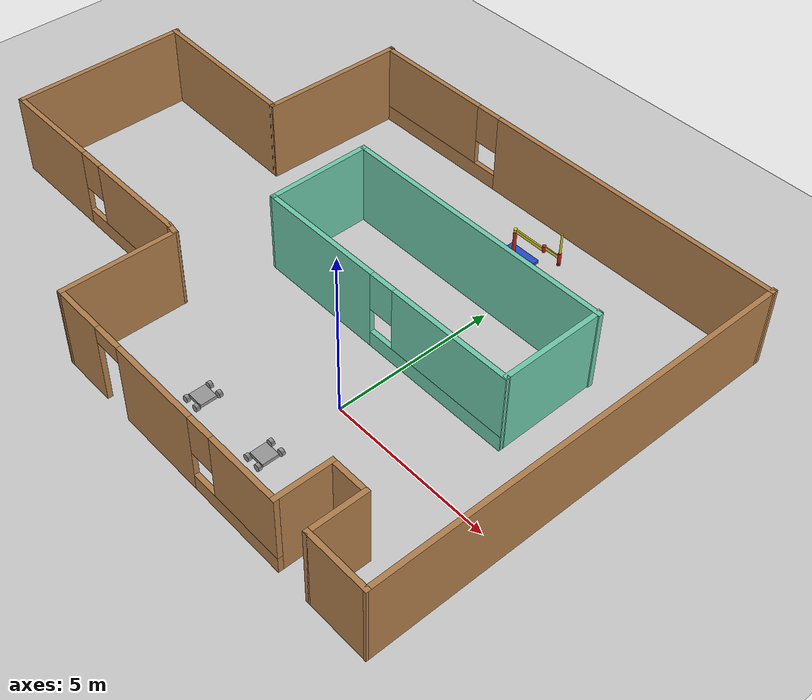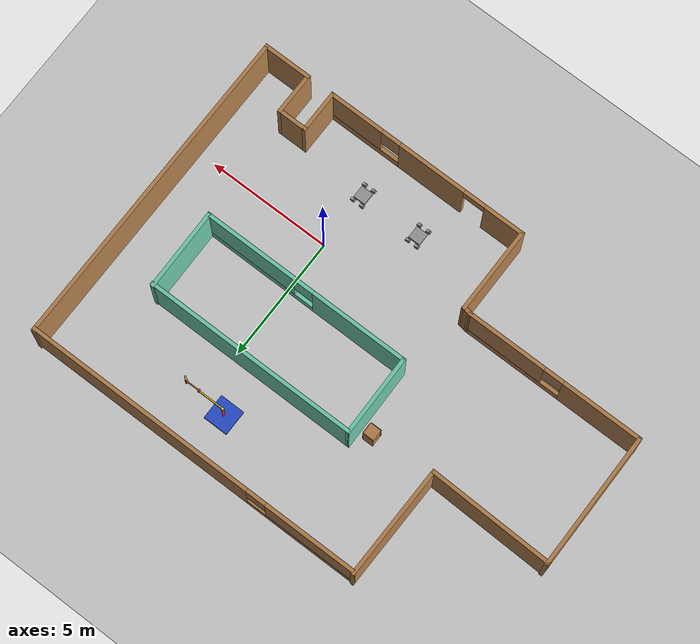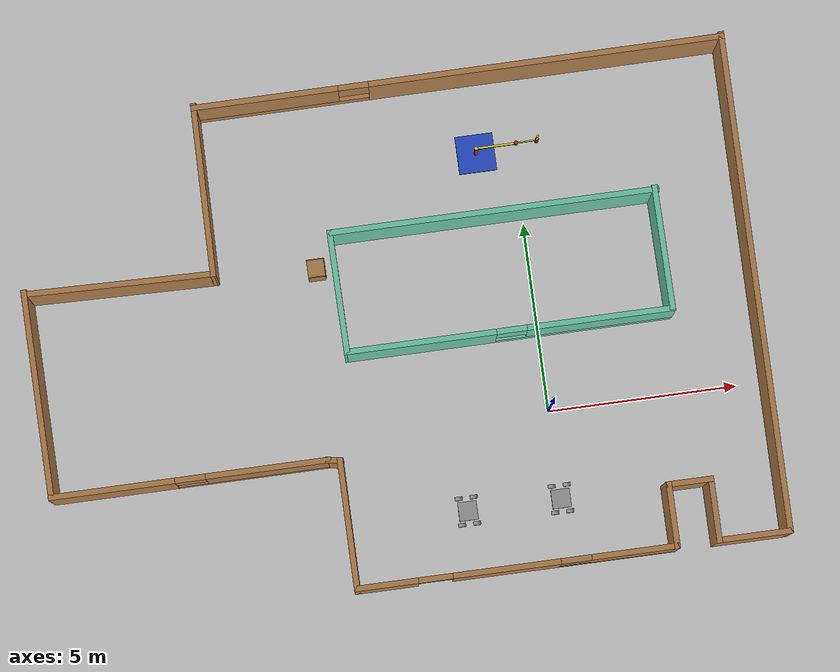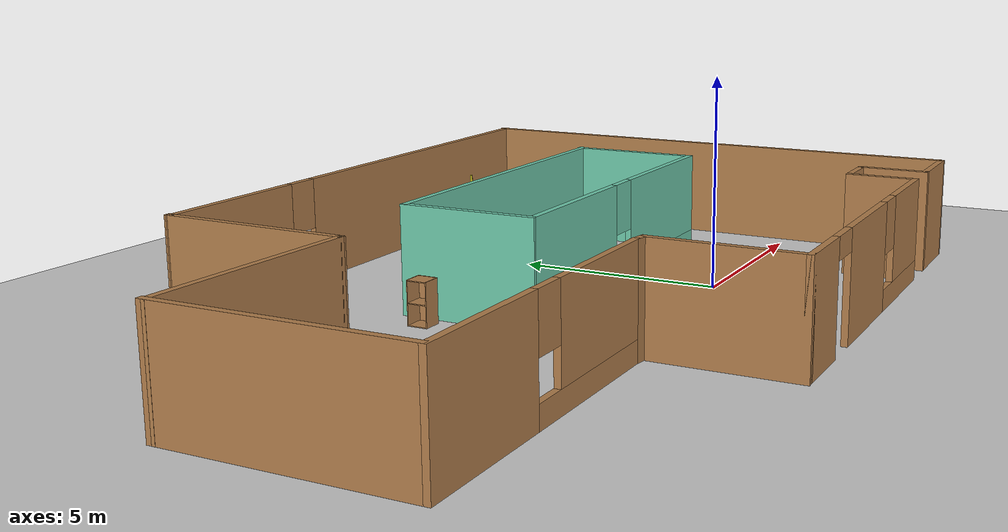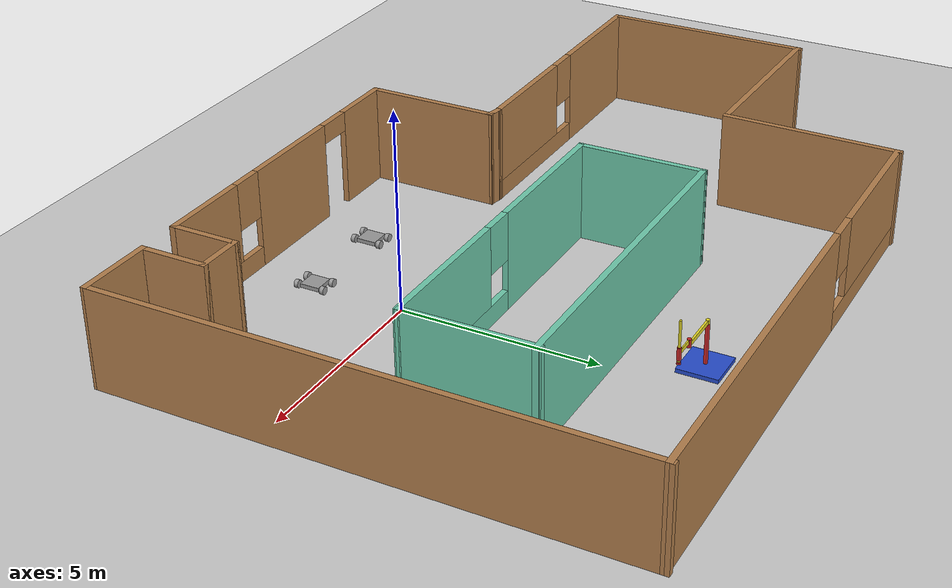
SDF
<sdf version="1.6">
 <world name="default">
  <plugin name="hello" filename="libhello.so"/>
  <light name="sun" type="directional">
   <pose>0 0 10 0 -0 0</pose>
   <diffuse>0.8 0.8 0.8 1</diffuse>
   <specular>0.2 0.2 0.2 1</specular>
   <attenuation>
    <range>1000</range>
    <constant>0.9</constant>
    <linear>0.01</linear>
    <quadratic>0.001</quadratic>
   </attenuation>
   <direction>-0.5 0.1 -0.9</direction>
  </light>
  <model name="ground_plane">
   <static>1</static>
   <link name="link">
    <collision name="collision">
     <geometry><plane><normal>0 0 1</normal><size>100 100</size></plane></geometry>
     <surface><friction><ode><mu>100</mu><mu2>50</mu2></ode></friction></surface>
    </collision>
    <visual name="visual">
     <cast_shadows>0</cast_shadows>
     <geometry><plane><normal>0 0 1</normal><size>100 100</size></plane></geometry>
     <material>
      <script><uri>file://media/materials/scripts/gazebo.material</uri><name>Gazebo/Grey</name></script>
     </material>
    </visual>
   </link>
  </model>
  <gravity>0 0 -9.8</gravity>
  <magnetic_field>6e-06 2.3e-05 -4.2e-05</magnetic_field>
  <atmosphere type="adiabatic"/>
  <physics name="default_physics" default="0" type="ode">
   <max_step_size>0.001</max_step_size>
   <real_time_factor>1</real_time_factor>
   <real_time_update_rate>1000</real_time_update_rate>
  </physics>
  <scene><ambient>0.4 0.4 0.4 1</ambient><background>0.7 0.7 0.7 1</background><shadows>1</shadows></scene>
  <spherical_coordinates>
   <surface_model>EARTH_WGS84</surface_model>
   <latitude_deg>0</latitude_deg>
   <longitude_deg>0</longitude_deg>
   <elevation>0</elevation>
   <heading_deg>0</heading_deg>
  </spherical_coordinates>
  <model name="robot">
   <link name="link_0">
    <inertial>
     <mass>1</mass>
     <inertia>
      <ixx>0.166667</ixx>
      <ixy>0</ixy>
      <ixz>0</ixz>
      <iyy>0.166667</iyy>
      <iyz>0</iyz>
      <izz>0.166667</izz>
     </inertia>
    </inertial>
    <visual name="visual">
     <geometry><box><size>0.5 0.5 0.1</size></box></geometry>
     <material>
      <lighting>1</lighting>
      <script><uri>file://media/materials/scripts/gazebo.material</uri><name>Gazebo/Grey</name></script>
      <shader type="pixel"><normal_map>__default__</normal_map></shader>
      <ambient>0.3 0.3 0.3 1</ambient>
      <diffuse>0.7 0.7 0.7 1</diffuse>
      <specular>0.01 0.01 0.01 1</specular>
      <emissive>0 0 0 1</emissive>
     </material>
    </visual>
    <collision name="collision">
     <geometry><box><size>0.5 0.5 0.1</size></box></geometry>
     <surface>
      <friction>
       <ode><mu>1</mu><mu2>1</mu2><fdir1>0 0 0</fdir1><slip1>0</slip1><slip2>0</slip2></ode>
       <torsional>
        <coefficient>1</coefficient>
        <patch_radius>0</patch_radius>
        <surface_radius>0</surface_radius>
        <use_patch_radius>1</use_patch_radius>
        <ode><slip>0</slip></ode>
       </torsional>
      </friction>
      <bounce><restitution_coefficient>0</restitution_coefficient><threshold>1e+06</threshold></bounce>
      <contact>
       <collide_without_contact>0</collide_without_contact>
       <collide_without_contact_bitmask>1</collide_without_contact_bitmask>
       <collide_bitmask>1</collide_bitmask>
       <ode>
        <soft_cfm>0</soft_cfm>
        <soft_erp>0.2</soft_erp>
        <kp>1e+13</kp>
        <kd>1</kd>
        <max_vel>0.01</max_vel>
        <min_depth>0</min_depth>
       </ode>
       <bullet>
        <split_impulse>1</split_impulse>
        <split_impulse_penetration_threshold>-0.01</split_impulse_penetration_threshold>
        <soft_cfm>0</soft_cfm>
        <soft_erp>0.2</soft_erp>
        <kp>1e+13</kp>
        <kd>1</kd>
       </bullet>
      </contact>
     </surface>
    </collision>
   </link>
   <link name="link_1">
    <pose>0.2 -0.35 0 1.5707 -0 0</pose>
    <inertial>
     <mass>1</mass>
     <inertia><ixx>0.145833</ixx><ixy>0</ixy><ixz>0</ixz><iyy>0.145833</iyy><iyz>0</iyz><izz>0.125</izz></inertia>
    </inertial>
    <visual name="visual">
     <geometry><cylinder><radius>0.1</radius><length>0.1</length></cylinder></geometry>
     <material>
      <lighting>1</lighting>
      <script><uri>file://media/materials/scripts/gazebo.material</uri><name>Gazebo/Grey</name></script>
      <shader type="pixel"><normal_map>__default__</normal_map></shader>
      <ambient>0.3 0.3 0.3 1</ambient>
      <diffuse>0.7 0.7 0.7 1</diffuse>
      <specular>0.01 0.01 0.01 1</specular>
      <emissive>0 0 0 1</emissive>
     </material>
    </visual>
    <collision name="collision">
     <geometry><cylinder><radius>0.1</radius><length>0.1</length></cylinder></geometry>
     <surface>
      <friction>
       <ode><mu>1</mu><mu2>1</mu2><fdir1>0 0 0</fdir1><slip1>0</slip1><slip2>0</slip2></ode>
       <torsional>
        <coefficient>1</coefficient>
        <patch_radius>0</patch_radius>
        <surface_radius>0</surface_radius>
        <use_patch_radius>1</use_patch_radius>
        <ode><slip>0</slip></ode>
       </torsional>
      </friction>
      <bounce><restitution_coefficient>0</restitution_coefficient><threshold>1e+06</threshold></bounce>
      <contact>
       <collide_without_contact>0</collide_without_contact>
       <collide_without_contact_bitmask>1</collide_without_contact_bitmask>
       <collide_bitmask>1</collide_bitmask>
       <ode>
        <soft_cfm>0</soft_cfm>
        <soft_erp>0.2</soft_erp>
        <kp>1e+13</kp>
        <kd>1</kd>
        <max_vel>0.01</max_vel>
        <min_depth>0</min_depth>
       </ode>
       <bullet>
        <split_impulse>1</split_impulse>
        <split_impulse_penetration_threshold>-0.01</split_impulse_penetration_threshold>
        <soft_cfm>0</soft_cfm>
        <soft_erp>0.2</soft_erp>
        <kp>1e+13</kp>
        <kd>1</kd>
       </bullet>
      </contact>
     </surface>
    </collision>
   </link>
   <link name="link_1_clone">
    <pose>-0.2 0.35 0 1.5707 -0 0</pose>
    <inertial>
     <mass>1</mass>
     <inertia><ixx>0.145833</ixx><ixy>0</ixy><ixz>0</ixz><iyy>0.145833</iyy><iyz>0</iyz><izz>0.125</izz></inertia>
    </inertial>
    <visual name="visual">
     <geometry><cylinder><radius>0.1</radius><length>0.1</length></cylinder></geometry>
     <material>
      <lighting>1</lighting>
      <script><uri>file://media/materials/scripts/gazebo.material</uri><name>Gazebo/Grey</name></script>
      <shader type="pixel"><normal_map>__default__</normal_map></shader>
      <ambient>0.3 0.3 0.3 1</ambient>
      <diffuse>0.7 0.7 0.7 1</diffuse>
      <specular>0.01 0.01 0.01 1</specular>
      <emissive>0 0 0 1</emissive>
     </material>
    </visual>
    <collision name="collision">
     <geometry><cylinder><radius>0.1</radius><length>0.1</length></cylinder></geometry>
     <surface>
      <friction>
       <ode><mu>1</mu><mu2>1</mu2><fdir1>0 0 0</fdir1><slip1>0</slip1><slip2>0</slip2></ode>
       <torsional>
        <coefficient>1</coefficient>
        <patch_radius>0</patch_radius>
        <surface_radius>0</surface_radius>
        <use_patch_radius>1</use_patch_radius>
        <ode><slip>0</slip></ode>
       </torsional>
      </friction>
      <bounce><restitution_coefficient>0</restitution_coefficient><threshold>1e+06</threshold></bounce>
      <contact>
       <collide_without_contact>0</collide_without_contact>
       <collide_without_contact_bitmask>1</collide_without_contact_bitmask>
       <collide_bitmask>1</collide_bitmask>
       <ode>
        <soft_cfm>0</soft_cfm>
        <soft_erp>0.2</soft_erp>
        <kp>1e+13</kp>
        <kd>1</kd>
        <max_vel>0.01</max_vel>
        <min_depth>0</min_depth>
       </ode>
       <bullet>
        <split_impulse>1</split_impulse>
        <split_impulse_penetration_threshold>-0.01</split_impulse_penetration_threshold>
        <soft_cfm>0</soft_cfm>
        <soft_erp>0.2</soft_erp>
        <kp>1e+13</kp>
        <kd>1</kd>
       </bullet>
      </contact>
     </surface>
    </collision>
   </link>
   <link name="link_1_clone_0">
    <pose>0.2 0.35 0 1.5707 -0 0</pose>
    <inertial>
     <mass>1</mass>
     <inertia><ixx>0.145833</ixx><ixy>0</ixy><ixz>0</ixz><iyy>0.145833</iyy><iyz>0</iyz><izz>0.125</izz></inertia>
    </inertial>
    <visual name="visual">
     <geometry><cylinder><radius>0.1</radius><length>0.1</length></cylinder></geometry>
     <material>
      <lighting>1</lighting>
      <script><uri>file://media/materials/scripts/gazebo.material</uri><name>Gazebo/Grey</name></script>
      <shader type="pixel"><normal_map>__default__</normal_map></shader>
      <ambient>0.3 0.3 0.3 1</ambient>
      <diffuse>0.7 0.7 0.7 1</diffuse>
      <specular>0.01 0.01 0.01 1</specular>
      <emissive>0 0 0 1</emissive>
     </material>
    </visual>
    <collision name="collision">
     <geometry><cylinder><radius>0.1</radius><length>0.1</length></cylinder></geometry>
     <surface>
      <friction>
       <ode><mu>1</mu><mu2>1</mu2><fdir1>0 0 0</fdir1><slip1>0</slip1><slip2>0</slip2></ode>
       <torsional>
        <coefficient>1</coefficient>
        <patch_radius>0</patch_radius>
        <surface_radius>0</surface_radius>
        <use_patch_radius>1</use_patch_radius>
        <ode><slip>0</slip></ode>
       </torsional>
      </friction>
      <bounce><restitution_coefficient>0</restitution_coefficient><threshold>1e+06</threshold></bounce>
      <contact>
       <collide_without_contact>0</collide_without_contact>
       <collide_without_contact_bitmask>1</collide_without_contact_bitmask>
       <collide_bitmask>1</collide_bitmask>
       <ode>
        <soft_cfm>0</soft_cfm>
        <soft_erp>0.2</soft_erp>
        <kp>1e+13</kp>
        <kd>1</kd>
        <max_vel>0.01</max_vel>
        <min_depth>0</min_depth>
       </ode>
       <bullet>
        <split_impulse>1</split_impulse>
        <split_impulse_penetration_threshold>-0.01</split_impulse_penetration_threshold>
        <soft_cfm>0</soft_cfm>
        <soft_erp>0.2</soft_erp>
        <kp>1e+13</kp>
        <kd>1</kd>
       </bullet>
      </contact>
     </surface>
    </collision>
   </link>
   <link name="link_1_clone_1">
    <pose>-0.2 -0.35 0 1.5707 -0 0</pose>
    <inertial>
     <mass>1</mass>
     <inertia><ixx>0.145833</ixx><ixy>0</ixy><ixz>0</ixz><iyy>0.145833</iyy><iyz>0</iyz><izz>0.125</izz></inertia>
    </inertial>
    <visual name="visual">
     <geometry><cylinder><radius>0.1</radius><length>0.1</length></cylinder></geometry>
     <material>
      <lighting>1</lighting>
      <script><uri>file://media/materials/scripts/gazebo.material</uri><name>Gazebo/Grey</name></script>
      <shader type="pixel"><normal_map>__default__</normal_map></shader>
      <ambient>0.3 0.3 0.3 1</ambient>
      <diffuse>0.7 0.7 0.7 1</diffuse>
      <specular>0.01 0.01 0.01 1</specular>
      <emissive>0 0 0 1</emissive>
     </material>
    </visual>
    <collision name="collision">
     <geometry><cylinder><radius>0.1</radius><length>0.1</length></cylinder></geometry>
     <surface>
      <friction>
       <ode><mu>1</mu><mu2>1</mu2><fdir1>0 0 0</fdir1><slip1>0</slip1><slip2>0</slip2></ode>
       <torsional>
        <coefficient>1</coefficient>
        <patch_radius>0</patch_radius>
        <surface_radius>0</surface_radius>
        <use_patch_radius>1</use_patch_radius>
        <ode><slip>0</slip></ode>
       </torsional>
      </friction>
      <bounce><restitution_coefficient>0</restitution_coefficient><threshold>1e+06</threshold></bounce>
      <contact>
       <collide_without_contact>0</collide_without_contact>
       <collide_without_contact_bitmask>1</collide_without_contact_bitmask>
       <collide_bitmask>1</collide_bitmask>
       <ode>
        <soft_cfm>0</soft_cfm>
        <soft_erp>0.2</soft_erp>
        <kp>1e+13</kp>
        <kd>1</kd>
        <max_vel>0.01</max_vel>
        <min_depth>0</min_depth>
       </ode>
       <bullet>
        <split_impulse>1</split_impulse>
        <split_impulse_penetration_threshold>-0.01</split_impulse_penetration_threshold>
        <soft_cfm>0</soft_cfm>
        <soft_erp>0.2</soft_erp>
        <kp>1e+13</kp>
        <kd>1</kd>
       </bullet>
      </contact>
     </surface>
    </collision>
   </link>
   <joint name="link_0_JOINT_0" type="revolute">
    <parent>link_0</parent>
    <child>link_1</child>
    <pose>0 0 -0.03 0 -0 0</pose>
    <axis>
     <xyz>1 0 0</xyz>
     <use_parent_model_frame>0</use_parent_model_frame>
     <limit>
      <lower>-1.79769e+308</lower>
      <upper>1.79769e+308</upper>
      <effort>-1</effort>
      <velocity>-1</velocity>
     </limit>
     <dynamics>
      <spring_reference>0</spring_reference>
      <spring_stiffness>0</spring_stiffness>
      <damping>0</damping>
     </dynamics>
    </axis>
    <physics>
     <ode><limit><cfm>0</cfm><erp>0.2</erp></limit><suspension><cfm>0</cfm><erp>0.2</erp></suspension></ode>
    </physics>
   </joint>
   <joint name="link_0_JOINT_1" type="revolute">
    <parent>link_0</parent>
    <child>link_1_clone_1</child>
    <axis>
     <xyz>1 0 0</xyz>
     <use_parent_model_frame>0</use_parent_model_frame>
     <limit>
      <lower>-1.79769e+308</lower>
      <upper>1.79769e+308</upper>
      <effort>-1</effort>
      <velocity>-1</velocity>
     </limit>
     <dynamics>
      <spring_reference>0</spring_reference>
      <spring_stiffness>0</spring_stiffness>
      <damping>0</damping>
     </dynamics>
    </axis>
    <physics>
     <ode><limit><cfm>0</cfm><erp>0.2</erp></limit><suspension><cfm>0</cfm><erp>0.2</erp></suspension></ode>
    </physics>
   </joint>
   <joint name="link_0_JOINT_2" type="revolute">
    <parent>link_0</parent>
    <child>link_1_clone_0</child>
    <axis>
     <xyz>1 0 0</xyz>
     <use_parent_model_frame>0</use_parent_model_frame>
     <limit>
      <lower>-1.79769e+308</lower>
      <upper>1.79769e+308</upper>
      <effort>-1</effort>
      <velocity>-1</velocity>
     </limit>
     <dynamics>
      <spring_reference>0</spring_reference>
      <spring_stiffness>0</spring_stiffness>
      <damping>0</damping>
     </dynamics>
    </axis>
    <physics>
     <ode><limit><cfm>0</cfm><erp>0.2</erp></limit><suspension><cfm>0</cfm><erp>0.2</erp></suspension></ode>
    </physics>
   </joint>
   <joint name="link_0_JOINT_3" type="revolute">
    <parent>link_0</parent>
    <child>link_1_clone</child>
    <axis>
     <xyz>1 0 0</xyz>
     <use_parent_model_frame>0</use_parent_model_frame>
     <limit>
      <lower>-1.79769e+308</lower>
      <upper>1.79769e+308</upper>
      <effort>-1</effort>
      <velocity>-1</velocity>
     </limit>
     <dynamics>
      <spring_reference>0</spring_reference>
      <spring_stiffness>0</spring_stiffness>
      <damping>0</damping>
     </dynamics>
    </axis>
    <physics>
     <ode><limit><cfm>0</cfm><erp>0.2</erp></limit><suspension><cfm>0</cfm><erp>0.2</erp></suspension></ode>
    </physics>
   </joint>
   <static>0</static>
   <pose>0 -2.33787 0.1 0 -0 0</pose>
  </model>
  <model name="building">
   <pose>-3.75245 2.48047 0 0 -0 0</pose>
   <link name="Wall_1">
    <collision name="Wall_1_Collision">
     <geometry><box><size>3.5 0.15 2.5</size></box></geometry>
     <pose>0 0 1.25 0 -0 0</pose>
    </collision>
    <visual name="Wall_1_Visual">
     <pose>0 0 1.25 0 -0 0</pose>
     <geometry><box><size>3.5 0.15 2.5</size></box></geometry>
     <material>
      <script><uri>file://media/materials/scripts/gazebo.material</uri><name>Gazebo/Wood</name></script>
      <ambient>1 1 1 1</ambient>
     </material>
     <meta><layer>0</layer></meta>
    </visual>
    <pose>-1.87755 -4.85547 0 0 0 -1.5708</pose>
   </link>
   <link name="Wall_10">
    <pose>2.49783 6.46108 0 0 0 -3.13826</pose>
    <visual name="Wall_10_Visual_0">
     <pose>-2.33655 0 1.25 0 -0 0</pose>
     <geometry><box><size>9.37127 0.15 2.5</size></box></geometry>
     <material>
      <script><uri>file://media/materials/scripts/gazebo.material</uri><name>Gazebo/Wood</name></script>
      <ambient>1 1 1 1</ambient>
     </material>
     <meta><layer>0</layer></meta>
    </visual>
    <collision name="Wall_10_Collision_0">
     <geometry><box><size>9.37127 0.15 2.5</size></box></geometry>
     <pose>-2.33655 0 1.25 0 -0 0</pose>
    </collision>
    <visual name="Wall_10_Visual_1">
     <pose>4.68564 0 0.25 0 -0 0</pose>
     <geometry><box><size>4.67309 0.15 0.5</size></box></geometry>
     <material>
      <script><uri>file://media/materials/scripts/gazebo.material</uri><name>Gazebo/Wood</name></script>
      <ambient>1 1 1 1</ambient>
     </material>
     <meta><layer>0</layer></meta>
    </visual>
    <collision name="Wall_10_Collision_1">
     <geometry><box><size>4.67309 0.15 0.5</size></box></geometry>
     <pose>4.68564 0 0.25 0 -0 0</pose>
    </collision>
    <visual name="Wall_10_Visual_2">
     <pose>5.08564 0 1.5 0 -0 0</pose>
     <geometry><box><size>3.87309 0.15 2</size></box></geometry>
     <material>
      <script><uri>file://media/materials/scripts/gazebo.material</uri><name>Gazebo/Wood</name></script>
      <ambient>1 1 1 1</ambient>
     </material>
     <meta><layer>0</layer></meta>
    </visual>
    <collision name="Wall_10_Collision_2">
     <geometry><box><size>3.87309 0.15 2</size></box></geometry>
     <pose>5.08564 0 1.5 0 -0 0</pose>
    </collision>
    <visual name="Wall_10_Visual_3">
     <pose>2.74909 0 1.9 0 -0 0</pose>
     <geometry><box><size>0.8 0.15 1.2</size></box></geometry>
     <material>
      <script><uri>file://media/materials/scripts/gazebo.material</uri><name>Gazebo/Wood</name></script>
      <ambient>1 1 1 1</ambient>
     </material>
     <meta><layer>0</layer></meta>
    </visual>
    <collision name="Wall_10_Collision_3">
     <geometry><box><size>0.8 0.15 1.2</size></box></geometry>
     <pose>2.74909 0 1.9 0 -0 0</pose>
    </collision>
   </link>
   <link name="Wall_11">
    <collision name="Wall_11_Collision">
     <geometry><box><size>4.5701 0.15 2.5</size></box></geometry>
     <pose>0 0 1.25 0 -0 0</pose>
    </collision>
    <visual name="Wall_11_Visual">
     <pose>0 0 1.25 0 -0 0</pose>
     <geometry><box><size>4.5701 0.15 2.5</size></box></geometry>
     <material>
      <script><uri>file://media/materials/scripts/gazebo.material</uri><name>Gazebo/Wood</name></script>
      <ambient>1 1 1 1</ambient>
     </material>
     <meta><layer>0</layer></meta>
    </visual>
    <pose>-4.47813 4.27477 0 0 0 -1.58382</pose>
   </link>
   <link name="Wall_12">
    <collision name="Wall_12_Collision">
     <geometry><box><size>5.04168 0.15 2.5</size></box></geometry>
     <pose>0 0 1.25 0 -0 0</pose>
    </collision>
    <visual name="Wall_12_Visual">
     <pose>0 0 1.25 0 -0 0</pose>
     <geometry><box><size>5.04168 0.15 2.5</size></box></geometry>
     <material>
      <script><uri>file://media/materials/scripts/gazebo.material</uri><name>Gazebo/Wood</name></script>
      <ambient>1 1 1 1</ambient>
     </material>
     <meta><layer>0</layer></meta>
    </visual>
    <pose>-6.99831 2.12344 0 0 -0 3.11783</pose>
   </link>
   <link name="Wall_13">
    <collision name="Wall_13_Collision">
     <geometry><box><size>5.47343 0.15 2.5</size></box></geometry>
     <pose>0 0 1.25 0 -0 0</pose>
    </collision>
    <visual name="Wall_13_Visual">
     <pose>0 0 1.25 0 -0 0</pose>
     <geometry><box><size>5.47343 0.15 2.5</size></box></geometry>
     <material>
      <script><uri>file://media/materials/scripts/gazebo.material</uri><name>Gazebo/Wood</name></script>
      <ambient>1 1 1 1</ambient>
     </material>
     <meta><layer>0</layer></meta>
    </visual>
    <pose>-9.42597 -0.433839 0 0 0 -1.56422</pose>
   </link>
   <link name="Wall_14">
    <pose>-5.79302 -3.13612 0 0 -0 0.00156</pose>
    <visual name="Wall_14_Visual_0">
     <pose>-2.04094 0 1.25 0 -0 0</pose>
     <geometry><box><size>3.29907 0.15 2.5</size></box></geometry>
     <material>
      <script><uri>file://media/materials/scripts/gazebo.material</uri><name>Gazebo/Wood</name></script>
      <ambient>1 1 1 1</ambient>
     </material>
     <meta><layer>0</layer></meta>
    </visual>
    <collision name="Wall_14_Collision_0">
     <geometry><box><size>3.29907 0.15 2.5</size></box></geometry>
     <pose>-2.04094 0 1.25 0 -0 0</pose>
    </collision>
    <visual name="Wall_14_Visual_1">
     <pose>1.64953 0 0.25 0 -0 0</pose>
     <geometry><box><size>4.08187 0.15 0.5</size></box></geometry>
     <material>
      <script><uri>file://media/materials/scripts/gazebo.material</uri><name>Gazebo/Wood</name></script>
      <ambient>1 1 1 1</ambient>
     </material>
     <meta><layer>0</layer></meta>
    </visual>
    <collision name="Wall_14_Collision_1">
     <geometry><box><size>4.08187 0.15 0.5</size></box></geometry>
     <pose>1.64953 0 0.25 0 -0 0</pose>
    </collision>
    <visual name="Wall_14_Visual_2">
     <pose>2.04954 0 1.5 0 -0 0</pose>
     <geometry><box><size>3.28187 0.15 2</size></box></geometry>
     <material>
      <script><uri>file://media/materials/scripts/gazebo.material</uri><name>Gazebo/Wood</name></script>
      <ambient>1 1 1 1</ambient>
     </material>
     <meta><layer>0</layer></meta>
    </visual>
    <collision name="Wall_14_Collision_2">
     <geometry><box><size>3.28187 0.15 2</size></box></geometry>
     <pose>2.04954 0 1.5 0 -0 0</pose>
    </collision>
    <visual name="Wall_14_Visual_3">
     <pose>0.0086 0 1.9 0 -0 0</pose>
     <geometry><box><size>0.8 0.15 1.2</size></box></geometry>
     <material>
      <script><uri>file://media/materials/scripts/gazebo.material</uri><name>Gazebo/Wood</name></script>
      <ambient>1 1 1 1</ambient>
     </material>
     <meta><layer>0</layer></meta>
    </visual>
    <collision name="Wall_14_Collision_3">
     <geometry><box><size>0.8 0.15 1.2</size></box></geometry>
     <pose>0.0086 0 1.9 0 -0 0</pose>
    </collision>
   </link>
   <link name="Wall_15">
    <collision name="Wall_15_Collision">
     <geometry><box><size>0.454138 0.15 2.5</size></box></geometry>
     <pose>0 0 1.25 0 -0 0</pose>
    </collision>
    <visual name="Wall_15_Visual">
     <pose>0 0 1.25 0 -0 0</pose>
     <geometry><box><size>0.454138 0.15 2.5</size></box></geometry>
     <material>
      <script><uri>file://media/materials/scripts/gazebo.material</uri><name>Gazebo/Wood</name></script>
      <ambient>1 1 1 1</ambient>
     </material>
     <meta><layer>0</layer></meta>
    </visual>
    <pose>-2.02755 -3.15547 0 0 0 -0.165149</pose>
   </link>
   <link name="Wall_17">
    <collision name="Wall_17_Collision">
     <geometry><box><size>3.28932 0.15 2.5</size></box></geometry>
     <pose>0 0 1.25 0 -0 0</pose>
    </collision>
    <visual name="Wall_17_Visual">
     <pose>0 0 1.25 0 -0 0</pose>
     <geometry><box><size>3.28932 0.15 2.5</size></box></geometry>
     <material>
      <script><uri>file://media/materials/scripts/gazebo.material</uri><name>Gazebo/Grey</name></script>
      <ambient>0.435294 0.796078 0.67451 1</ambient>
     </material>
     <meta><layer>0</layer></meta>
    </visual>
    <pose>-1.3451 1.15404 0 0 0 -1.55965</pose>
   </link>
   <link name="Wall_18">
    <pose>2.9621 -0.409886 0 0 -0 0.001329</pose>
    <visual name="Wall_18_Visual_0">
     <pose>-2.34342 0 1.25 0 -0 0</pose>
     <geometry><box><size>3.95005 0.15 2.5</size></box></geometry>
     <material>
      <script><uri>file://media/materials/scripts/gazebo.material</uri><name>Gazebo/Grey</name></script>
      <ambient>0.435294 0.796078 0.67451 1</ambient>
     </material>
     <meta><layer>0</layer></meta>
    </visual>
    <collision name="Wall_18_Collision_0">
     <geometry><box><size>3.95005 0.15 2.5</size></box></geometry>
     <pose>-2.34342 0 1.25 0 -0 0</pose>
    </collision>
    <visual name="Wall_18_Visual_1">
     <pose>1.97503 0 0.25 0 -0 0</pose>
     <geometry><box><size>4.68684 0.15 0.5</size></box></geometry>
     <material>
      <script><uri>file://media/materials/scripts/gazebo.material</uri><name>Gazebo/Grey</name></script>
      <ambient>0.435294 0.796078 0.67451 1</ambient>
     </material>
     <meta><layer>0</layer></meta>
    </visual>
    <collision name="Wall_18_Collision_1">
     <geometry><box><size>4.68684 0.15 0.5</size></box></geometry>
     <pose>1.97503 0 0.25 0 -0 0</pose>
    </collision>
    <visual name="Wall_18_Visual_2">
     <pose>2.37503 0 1.5 0 -0 0</pose>
     <geometry><box><size>3.88684 0.15 2</size></box></geometry>
     <material>
      <script><uri>file://media/materials/scripts/gazebo.material</uri><name>Gazebo/Grey</name></script>
      <ambient>0.435294 0.796078 0.67451 1</ambient>
     </material>
     <meta><layer>0</layer></meta>
    </visual>
    <collision name="Wall_18_Collision_2">
     <geometry><box><size>3.88684 0.15 2</size></box></geometry>
     <pose>2.37503 0 1.5 0 -0 0</pose>
    </collision>
    <visual name="Wall_18_Visual_3">
     <pose>0.031604 0 1.9 0 -0 0</pose>
     <geometry><box><size>0.8 0.15 1.2</size></box></geometry>
     <material>
      <script><uri>file://media/materials/scripts/gazebo.material</uri><name>Gazebo/Grey</name></script>
      <ambient>0.435294 0.796078 0.67451 1</ambient>
     </material>
     <meta><layer>0</layer></meta>
    </visual>
    <collision name="Wall_18_Collision_3">
     <geometry><box><size>0.8 0.15 1.2</size></box></geometry>
     <pose>0.031604 0 1.9 0 -0 0</pose>
    </collision>
   </link>
   <link name="Wall_19">
    <collision name="Wall_19_Collision">
     <geometry><box><size>3.28932 0.15 2.5</size></box></geometry>
     <pose>0 0 1.25 0 -0 0</pose>
    </collision>
    <visual name="Wall_19_Visual">
     <pose>0 0 1.25 0 -0 0</pose>
     <geometry><box><size>3.28932 0.15 2.5</size></box></geometry>
     <material>
      <script><uri>file://media/materials/scripts/gazebo.material</uri><name>Gazebo/Grey</name></script>
      <ambient>0.435294 0.796078 0.67451 1</ambient>
     </material>
     <meta><layer>0</layer></meta>
    </visual>
    <pose>7.18805 1.2003 0 0 -0 1.58194</pose>
   </link>
   <link name="Wall_2">
    <pose>2.29745 -6.53047 0 0 -0 0</pose>
    <visual name="Wall_2_Visual_0">
     <pose>-3.41172 0 1.25 0 -0 0</pose>
     <geometry><box><size>1.67657 0.15 2.5</size></box></geometry>
     <material>
      <script><uri>file://media/materials/scripts/gazebo.material</uri><name>Gazebo/Wood</name></script>
      <ambient>1 1 1 1</ambient>
     </material>
     <meta><layer>0</layer></meta>
    </visual>
    <collision name="Wall_2_Collision_0">
     <geometry><box><size>1.67657 0.15 2.5</size></box></geometry>
     <pose>-3.41172 0 1.25 0 -0 0</pose>
    </collision>
    <visual name="Wall_2_Visual_1">
     <pose>-0.26302 0 1.25 0 -0 0</pose>
     <geometry><box><size>2.82083 0.15 2.5</size></box></geometry>
     <material>
      <script><uri>file://media/materials/scripts/gazebo.material</uri><name>Gazebo/Wood</name></script>
      <ambient>1 1 1 1</ambient>
     </material>
     <meta><layer>0</layer></meta>
    </visual>
    <collision name="Wall_2_Collision_1">
     <geometry><box><size>2.82083 0.15 2.5</size></box></geometry>
     <pose>-0.26302 0 1.25 0 -0 0</pose>
    </collision>
    <visual name="Wall_2_Visual_2">
     <pose>2.6987 0 0.25 0 -0 0</pose>
     <geometry><box><size>3.10261 0.15 0.5</size></box></geometry>
     <material>
      <script><uri>file://media/materials/scripts/gazebo.material</uri><name>Gazebo/Wood</name></script>
      <ambient>1 1 1 1</ambient>
     </material>
     <meta><layer>0</layer></meta>
    </visual>
    <collision name="Wall_2_Collision_2">
     <geometry><box><size>3.10261 0.15 0.5</size></box></geometry>
     <pose>2.6987 0 0.25 0 -0 0</pose>
    </collision>
    <visual name="Wall_2_Visual_3">
     <pose>3.0987 0 1.5 0 -0 0</pose>
     <geometry><box><size>2.30261 0.15 2</size></box></geometry>
     <material>
      <script><uri>file://media/materials/scripts/gazebo.material</uri><name>Gazebo/Wood</name></script>
      <ambient>1 1 1 1</ambient>
     </material>
     <meta><layer>0</layer></meta>
    </visual>
    <collision name="Wall_2_Collision_3">
     <geometry><box><size>2.30261 0.15 2</size></box></geometry>
     <pose>3.0987 0 1.5 0 -0 0</pose>
    </collision>
    <visual name="Wall_2_Visual_4">
     <pose>1.54739 0 1.9 0 -0 0</pose>
     <geometry><box><size>0.8 0.15 1.2</size></box></geometry>
     <material>
      <script><uri>file://media/materials/scripts/gazebo.material</uri><name>Gazebo/Wood</name></script>
      <ambient>1 1 1 1</ambient>
     </material>
     <meta><layer>0</layer></meta>
    </visual>
    <collision name="Wall_2_Collision_4">
     <geometry><box><size>0.8 0.15 1.2</size></box></geometry>
     <pose>1.54739 0 1.9 0 -0 0</pose>
    </collision>
    <visual name="Wall_2_Visual_5">
     <pose>-2.12343 0 2.25 0 -0 0</pose>
     <geometry><box><size>0.9 0.15 0.5</size></box></geometry>
     <material>
      <script><uri>file://media/materials/scripts/gazebo.material</uri><name>Gazebo/Wood</name></script>
      <ambient>1 1 1 1</ambient>
     </material>
     <meta><layer>0</layer></meta>
    </visual>
    <collision name="Wall_2_Collision_5">
     <geometry><box><size>0.9 0.15 0.5</size></box></geometry>
     <pose>-2.12343 0 2.25 0 -0 0</pose>
    </collision>
   </link>
   <link name="Wall_20">
    <collision name="Wall_20_Collision">
     <geometry><box><size>8.67188 0.15 2.5</size></box></geometry>
     <pose>0 0 1.25 0 -0 0</pose>
    </collision>
    <visual name="Wall_20_Visual">
     <pose>0 0 1.25 0 -0 0</pose>
     <geometry><box><size>8.67188 0.15 2.5</size></box></geometry>
     <material>
      <script><uri>file://media/materials/scripts/gazebo.material</uri><name>Gazebo/Grey</name></script>
      <ambient>0.435294 0.796078 0.67451 1</ambient>
     </material>
     <meta><layer>0</layer></meta>
    </visual>
    <pose>2.94461 2.72924 0 0 0 -3.14027</pose>
   </link>
   <link name="Wall_3">
    <collision name="Wall_3_Collision">
     <geometry><box><size>1.75 0.15 2.5</size></box></geometry>
     <pose>0 0 1.25 0 -0 0</pose>
    </collision>
    <visual name="Wall_3_Visual">
     <pose>0 0 1.25 0 -0 0</pose>
     <geometry><box><size>1.75 0.15 2.5</size></box></geometry>
     <material>
      <script><uri>file://media/materials/scripts/gazebo.material</uri><name>Gazebo/Wood</name></script>
      <ambient>1 1 1 1</ambient>
     </material>
     <meta><layer>0</layer></meta>
    </visual>
    <pose>6.47245 -5.73047 0 0 -0 1.5708</pose>
   </link>
   <link name="Wall_4">
    <collision name="Wall_4_Collision">
     <geometry><box><size>1.25 0.15 2.5</size></box></geometry>
     <pose>0 0 1.25 0 -0 0</pose>
    </collision>
    <visual name="Wall_4_Visual">
     <pose>0 0 1.25 0 -0 0</pose>
     <geometry><box><size>1.25 0.15 2.5</size></box></geometry>
     <material>
      <script><uri>file://media/materials/scripts/gazebo.material</uri><name>Gazebo/Wood</name></script>
      <ambient>1 1 1 1</ambient>
     </material>
     <meta><layer>0</layer></meta>
    </visual>
    <pose>7.02245 -4.93047 0 0 -0 0</pose>
   </link>
   <link name="Wall_5">
    <collision name="Wall_5_Collision">
     <geometry><box><size>1.75 0.15 2.5</size></box></geometry>
     <pose>0 0 1.25 0 -0 0</pose>
    </collision>
    <visual name="Wall_5_Visual">
     <pose>0 0 1.25 0 -0 0</pose>
     <geometry><box><size>1.75 0.15 2.5</size></box></geometry>
     <material>
      <script><uri>file://media/materials/scripts/gazebo.material</uri><name>Gazebo/Wood</name></script>
      <ambient>1 1 1 1</ambient>
     </material>
     <meta><layer>0</layer></meta>
    </visual>
    <pose>7.57245 -5.73047 0 0 0 -1.5708</pose>
   </link>
   <link name="Wall_6">
    <collision name="Wall_6_Collision">
     <geometry><box><size>2 0.15 2.5</size></box></geometry>
     <pose>0 0 1.25 0 -0 0</pose>
    </collision>
    <visual name="Wall_6_Visual">
     <pose>0 0 1.25 0 -0 0</pose>
     <geometry><box><size>2 0.15 2.5</size></box></geometry>
     <material>
      <script><uri>file://media/materials/scripts/gazebo.material</uri><name>Gazebo/Wood</name></script>
      <ambient>1 1 1 1</ambient>
     </material>
     <meta><layer>0</layer></meta>
    </visual>
    <pose>8.49745 -6.53047 0 0 -0 0</pose>
   </link>
   <link name="Wall_7">
    <collision name="Wall_7_Collision">
     <geometry><box><size>13.211 0.15 2.5</size></box></geometry>
     <pose>0 0 1.25 0 -0 0</pose>
    </collision>
    <visual name="Wall_7_Visual">
     <pose>0 0 1.25 0 -0 0</pose>
     <geometry><box><size>13.211 0.15 2.5</size></box></geometry>
     <material>
      <script><uri>file://media/materials/scripts/gazebo.material</uri><name>Gazebo/Wood</name></script>
      <ambient>1 1 1 1</ambient>
     </material>
     <meta><layer>0</layer></meta>
    </visual>
    <pose>9.43373 0 0 0 -0 1.56907</pose>
   </link>
   <static>1</static>
  </model>
  <model name="robot_clone">
   <link name="link_0">
    <inertial>
     <mass>1</mass>
     <inertia>
      <ixx>0.166667</ixx>
      <ixy>0</ixy>
      <ixz>0</ixz>
      <iyy>0.166667</iyy>
      <iyz>0</iyz>
      <izz>0.166667</izz>
     </inertia>
    </inertial>
    <visual name="visual">
     <geometry><box><size>0.5 0.5 0.1</size></box></geometry>
     <material>
      <lighting>1</lighting>
      <script><uri>file://media/materials/scripts/gazebo.material</uri><name>Gazebo/Grey</name></script>
      <shader type="pixel"><normal_map>__default__</normal_map></shader>
      <ambient>0.3 0.3 0.3 1</ambient>
      <diffuse>0.7 0.7 0.7 1</diffuse>
      <specular>0.01 0.01 0.01 1</specular>
      <emissive>0 0 0 1</emissive>
     </material>
    </visual>
    <collision name="collision">
     <geometry><box><size>0.5 0.5 0.1</size></box></geometry>
     <surface>
      <friction>
       <ode><mu>1</mu><mu2>1</mu2><fdir1>0 0 0</fdir1><slip1>0</slip1><slip2>0</slip2></ode>
       <torsional>
        <coefficient>1</coefficient>
        <patch_radius>0</patch_radius>
        <surface_radius>0</surface_radius>
        <use_patch_radius>1</use_patch_radius>
        <ode><slip>0</slip></ode>
       </torsional>
      </friction>
      <bounce><restitution_coefficient>0</restitution_coefficient><threshold>1e+06</threshold></bounce>
      <contact>
       <collide_without_contact>0</collide_without_contact>
       <collide_without_contact_bitmask>1</collide_without_contact_bitmask>
       <collide_bitmask>1</collide_bitmask>
       <ode>
        <soft_cfm>0</soft_cfm>
        <soft_erp>0.2</soft_erp>
        <kp>1e+13</kp>
        <kd>1</kd>
        <max_vel>0.01</max_vel>
        <min_depth>0</min_depth>
       </ode>
       <bullet>
        <split_impulse>1</split_impulse>
        <split_impulse_penetration_threshold>-0.01</split_impulse_penetration_threshold>
        <soft_cfm>0</soft_cfm>
        <soft_erp>0.2</soft_erp>
        <kp>1e+13</kp>
        <kd>1</kd>
       </bullet>
      </contact>
     </surface>
    </collision>
   </link>
   <link name="link_1">
    <pose>0.2 -0.35 0 1.5707 -0 0</pose>
    <inertial>
     <mass>1</mass>
     <inertia><ixx>0.145833</ixx><ixy>0</ixy><ixz>0</ixz><iyy>0.145833</iyy><iyz>0</iyz><izz>0.125</izz></inertia>
    </inertial>
    <visual name="visual">
     <geometry><cylinder><radius>0.1</radius><length>0.1</length></cylinder></geometry>
     <material>
      <lighting>1</lighting>
      <script><uri>file://media/materials/scripts/gazebo.material</uri><name>Gazebo/Grey</name></script>
      <shader type="pixel"><normal_map>__default__</normal_map></shader>
      <ambient>0.3 0.3 0.3 1</ambient>
      <diffuse>0.7 0.7 0.7 1</diffuse>
      <specular>0.01 0.01 0.01 1</specular>
      <emissive>0 0 0 1</emissive>
     </material>
    </visual>
    <collision name="collision">
     <geometry><cylinder><radius>0.1</radius><length>0.1</length></cylinder></geometry>
     <surface>
      <friction>
       <ode><mu>1</mu><mu2>1</mu2><fdir1>0 0 0</fdir1><slip1>0</slip1><slip2>0</slip2></ode>
       <torsional>
        <coefficient>1</coefficient>
        <patch_radius>0</patch_radius>
        <surface_radius>0</surface_radius>
        <use_patch_radius>1</use_patch_radius>
        <ode><slip>0</slip></ode>
       </torsional>
      </friction>
      <bounce><restitution_coefficient>0</restitution_coefficient><threshold>1e+06</threshold></bounce>
      <contact>
       <collide_without_contact>0</collide_without_contact>
       <collide_without_contact_bitmask>1</collide_without_contact_bitmask>
       <collide_bitmask>1</collide_bitmask>
       <ode>
        <soft_cfm>0</soft_cfm>
        <soft_erp>0.2</soft_erp>
        <kp>1e+13</kp>
        <kd>1</kd>
        <max_vel>0.01</max_vel>
        <min_depth>0</min_depth>
       </ode>
       <bullet>
        <split_impulse>1</split_impulse>
        <split_impulse_penetration_threshold>-0.01</split_impulse_penetration_threshold>
        <soft_cfm>0</soft_cfm>
        <soft_erp>0.2</soft_erp>
        <kp>1e+13</kp>
        <kd>1</kd>
       </bullet>
      </contact>
     </surface>
    </collision>
   </link>
   <link name="link_1_clone">
    <pose>-0.2 0.35 0 1.5707 -0 0</pose>
    <inertial>
     <mass>1</mass>
     <inertia><ixx>0.145833</ixx><ixy>0</ixy><ixz>0</ixz><iyy>0.145833</iyy><iyz>0</iyz><izz>0.125</izz></inertia>
    </inertial>
    <visual name="visual">
     <geometry><cylinder><radius>0.1</radius><length>0.1</length></cylinder></geometry>
     <material>
      <lighting>1</lighting>
      <script><uri>file://media/materials/scripts/gazebo.material</uri><name>Gazebo/Grey</name></script>
      <shader type="pixel"><normal_map>__default__</normal_map></shader>
      <ambient>0.3 0.3 0.3 1</ambient>
      <diffuse>0.7 0.7 0.7 1</diffuse>
      <specular>0.01 0.01 0.01 1</specular>
      <emissive>0 0 0 1</emissive>
     </material>
    </visual>
    <collision name="collision">
     <geometry><cylinder><radius>0.1</radius><length>0.1</length></cylinder></geometry>
     <surface>
      <friction>
       <ode><mu>1</mu><mu2>1</mu2><fdir1>0 0 0</fdir1><slip1>0</slip1><slip2>0</slip2></ode>
       <torsional>
        <coefficient>1</coefficient>
        <patch_radius>0</patch_radius>
        <surface_radius>0</surface_radius>
        <use_patch_radius>1</use_patch_radius>
        <ode><slip>0</slip></ode>
       </torsional>
      </friction>
      <bounce><restitution_coefficient>0</restitution_coefficient><threshold>1e+06</threshold></bounce>
      <contact>
       <collide_without_contact>0</collide_without_contact>
       <collide_without_contact_bitmask>1</collide_without_contact_bitmask>
       <collide_bitmask>1</collide_bitmask>
       <ode>
        <soft_cfm>0</soft_cfm>
        <soft_erp>0.2</soft_erp>
        <kp>1e+13</kp>
        <kd>1</kd>
        <max_vel>0.01</max_vel>
        <min_depth>0</min_depth>
       </ode>
       <bullet>
        <split_impulse>1</split_impulse>
        <split_impulse_penetration_threshold>-0.01</split_impulse_penetration_threshold>
        <soft_cfm>0</soft_cfm>
        <soft_erp>0.2</soft_erp>
        <kp>1e+13</kp>
        <kd>1</kd>
       </bullet>
      </contact>
     </surface>
    </collision>
   </link>
   <link name="link_1_clone_0">
    <pose>0.2 0.35 0 1.5707 -0 0</pose>
    <inertial>
     <mass>1</mass>
     <inertia><ixx>0.145833</ixx><ixy>0</ixy><ixz>0</ixz><iyy>0.145833</iyy><iyz>0</iyz><izz>0.125</izz></inertia>
    </inertial>
    <visual name="visual">
     <geometry><cylinder><radius>0.1</radius><length>0.1</length></cylinder></geometry>
     <material>
      <lighting>1</lighting>
      <script><uri>file://media/materials/scripts/gazebo.material</uri><name>Gazebo/Grey</name></script>
      <shader type="pixel"><normal_map>__default__</normal_map></shader>
      <ambient>0.3 0.3 0.3 1</ambient>
      <diffuse>0.7 0.7 0.7 1</diffuse>
      <specular>0.01 0.01 0.01 1</specular>
      <emissive>0 0 0 1</emissive>
     </material>
    </visual>
    <collision name="collision">
     <geometry><cylinder><radius>0.1</radius><length>0.1</length></cylinder></geometry>
     <surface>
      <friction>
       <ode><mu>1</mu><mu2>1</mu2><fdir1>0 0 0</fdir1><slip1>0</slip1><slip2>0</slip2></ode>
       <torsional>
        <coefficient>1</coefficient>
        <patch_radius>0</patch_radius>
        <surface_radius>0</surface_radius>
        <use_patch_radius>1</use_patch_radius>
        <ode><slip>0</slip></ode>
       </torsional>
      </friction>
      <bounce><restitution_coefficient>0</restitution_coefficient><threshold>1e+06</threshold></bounce>
      <contact>
       <collide_without_contact>0</collide_without_contact>
       <collide_without_contact_bitmask>1</collide_without_contact_bitmask>
       <collide_bitmask>1</collide_bitmask>
       <ode>
        <soft_cfm>0</soft_cfm>
        <soft_erp>0.2</soft_erp>
        <kp>1e+13</kp>
        <kd>1</kd>
        <max_vel>0.01</max_vel>
        <min_depth>0</min_depth>
       </ode>
       <bullet>
        <split_impulse>1</split_impulse>
        <split_impulse_penetration_threshold>-0.01</split_impulse_penetration_threshold>
        <soft_cfm>0</soft_cfm>
        <soft_erp>0.2</soft_erp>
        <kp>1e+13</kp>
        <kd>1</kd>
       </bullet>
      </contact>
     </surface>
    </collision>
   </link>
   <link name="link_1_clone_1">
    <pose>-0.2 -0.35 0 1.5707 -0 0</pose>
    <inertial>
     <mass>1</mass>
     <inertia><ixx>0.145833</ixx><ixy>0</ixy><ixz>0</ixz><iyy>0.145833</iyy><iyz>0</iyz><izz>0.125</izz></inertia>
    </inertial>
    <visual name="visual">
     <geometry><cylinder><radius>0.1</radius><length>0.1</length></cylinder></geometry>
     <material>
      <lighting>1</lighting>
      <script><uri>file://media/materials/scripts/gazebo.material</uri><name>Gazebo/Grey</name></script>
      <shader type="pixel"><normal_map>__default__</normal_map></shader>
      <ambient>0.3 0.3 0.3 1</ambient>
      <diffuse>0.7 0.7 0.7 1</diffuse>
      <specular>0.01 0.01 0.01 1</specular>
      <emissive>0 0 0 1</emissive>
     </material>
    </visual>
    <collision name="collision">
     <geometry><cylinder><radius>0.1</radius><length>0.1</length></cylinder></geometry>
     <surface>
      <friction>
       <ode><mu>1</mu><mu2>1</mu2><fdir1>0 0 0</fdir1><slip1>0</slip1><slip2>0</slip2></ode>
       <torsional>
        <coefficient>1</coefficient>
        <patch_radius>0</patch_radius>
        <surface_radius>0</surface_radius>
        <use_patch_radius>1</use_patch_radius>
        <ode><slip>0</slip></ode>
       </torsional>
      </friction>
      <bounce><restitution_coefficient>0</restitution_coefficient><threshold>1e+06</threshold></bounce>
      <contact>
       <collide_without_contact>0</collide_without_contact>
       <collide_without_contact_bitmask>1</collide_without_contact_bitmask>
       <collide_bitmask>1</collide_bitmask>
       <ode>
        <soft_cfm>0</soft_cfm>
        <soft_erp>0.2</soft_erp>
        <kp>1e+13</kp>
        <kd>1</kd>
        <max_vel>0.01</max_vel>
        <min_depth>0</min_depth>
       </ode>
       <bullet>
        <split_impulse>1</split_impulse>
        <split_impulse_penetration_threshold>-0.01</split_impulse_penetration_threshold>
        <soft_cfm>0</soft_cfm>
        <soft_erp>0.2</soft_erp>
        <kp>1e+13</kp>
        <kd>1</kd>
       </bullet>
      </contact>
     </surface>
    </collision>
   </link>
   <joint name="link_0_JOINT_0" type="revolute">
    <parent>link_0</parent>
    <child>link_1</child>
    <pose>0 0 -0.03 0 -0 0</pose>
    <axis>
     <xyz>1 0 0</xyz>
     <use_parent_model_frame>0</use_parent_model_frame>
     <limit>
      <lower>-1.79769e+308</lower>
      <upper>1.79769e+308</upper>
      <effort>-1</effort>
      <velocity>-1</velocity>
     </limit>
     <dynamics>
      <spring_reference>0</spring_reference>
      <spring_stiffness>0</spring_stiffness>
      <damping>0</damping>
     </dynamics>
    </axis>
    <physics>
     <ode><limit><cfm>0</cfm><erp>0.2</erp></limit><suspension><cfm>0</cfm><erp>0.2</erp></suspension></ode>
    </physics>
   </joint>
   <joint name="link_0_JOINT_1" type="revolute">
    <parent>link_0</parent>
    <child>link_1_clone_1</child>
    <axis>
     <xyz>1 0 0</xyz>
     <use_parent_model_frame>0</use_parent_model_frame>
     <limit>
      <lower>-1.79769e+308</lower>
      <upper>1.79769e+308</upper>
      <effort>-1</effort>
      <velocity>-1</velocity>
     </limit>
     <dynamics>
      <spring_reference>0</spring_reference>
      <spring_stiffness>0</spring_stiffness>
      <damping>0</damping>
     </dynamics>
    </axis>
    <physics>
     <ode><limit><cfm>0</cfm><erp>0.2</erp></limit><suspension><cfm>0</cfm><erp>0.2</erp></suspension></ode>
    </physics>
   </joint>
   <joint name="link_0_JOINT_2" type="revolute">
    <parent>link_0</parent>
    <child>link_1_clone_0</child>
    <axis>
     <xyz>1 0 0</xyz>
     <use_parent_model_frame>0</use_parent_model_frame>
     <limit>
      <lower>-1.79769e+308</lower>
      <upper>1.79769e+308</upper>
      <effort>-1</effort>
      <velocity>-1</velocity>
     </limit>
     <dynamics>
      <spring_reference>0</spring_reference>
      <spring_stiffness>0</spring_stiffness>
      <damping>0</damping>
     </dynamics>
    </axis>
    <physics>
     <ode><limit><cfm>0</cfm><erp>0.2</erp></limit><suspension><cfm>0</cfm><erp>0.2</erp></suspension></ode>
    </physics>
   </joint>
   <joint name="link_0_JOINT_3" type="revolute">
    <parent>link_0</parent>
    <child>link_1_clone</child>
    <axis>
     <xyz>1 0 0</xyz>
     <use_parent_model_frame>0</use_parent_model_frame>
     <limit>
      <lower>-1.79769e+308</lower>
      <upper>1.79769e+308</upper>
      <effort>-1</effort>
      <velocity>-1</velocity>
     </limit>
     <dynamics>
      <spring_reference>0</spring_reference>
      <spring_stiffness>0</spring_stiffness>
      <damping>0</damping>
     </dynamics>
    </axis>
    <physics>
     <ode><limit><cfm>0</cfm><erp>0.2</erp></limit><suspension><cfm>0</cfm><erp>0.2</erp></suspension></ode>
    </physics>
   </joint>
   <static>0</static>
   <pose>-2.47724 -2.33787 0.1 0 -0 0</pose>
  </model>
  <model name="cabinet">
   <static>1</static>
   <link name="cabinet_bottom_plate">
    <inertial>
     <pose>0 0 -1 0 -0 0</pose>
     <inertia><ixx>2.05</ixx><ixy>0</ixy><ixz>0</ixz><iyy>2.05</iyy><iyz>0</iyz><izz>2.05</izz></inertia>
     <mass>25</mass>
    </inertial>
    <collision name="cabinet_bottom_plate_geom">
     <pose>0 0 0.01 0 -0 0</pose>
     <geometry><box><size>0.45 0.45 0.02</size></box></geometry>
    </collision>
    <visual name="cabinet_bottom_plate_geom_visual">
     <pose>0 0 0.01 0 -0 0</pose>
     <geometry><box><size>0.45 0.45 0.02</size></box></geometry>
     <material>
      <script><uri>file://media/materials/scripts/gazebo.material</uri><name>Gazebo/Wood</name></script>
     </material>
    </visual>
    <collision name="cabinet_bottom_plate_geom_cabinet_back_plate">
     <pose>0.235 0 0.51 0 -0 0</pose>
     <geometry><box><size>0.02 0.45 1.02</size></box></geometry>
    </collision>
    <visual name="cabinet_bottom_plate_geom_cabinet_back_plate_visual">
     <pose>0.235 0 0.51 0 -0 0</pose>
     <geometry><box><size>0.02 0.45 1.02</size></box></geometry>
     <material>
      <script><uri>file://media/materials/scripts/gazebo.material</uri><name>Gazebo/Wood</name></script>
     </material>
    </visual>
    <collision name="cabinet_bottom_plate_geom_cabinet_left_plate">
     <pose>0 0.235 0.51 0 -0 0</pose>
     <geometry><box><size>0.45 0.02 1.02</size></box></geometry>
    </collision>
    <visual name="cabinet_bottom_plate_geom_cabinet_left_plate_visual">
     <pose>0 0.235 0.51 0 -0 0</pose>
     <geometry><box><size>0.45 0.02 1.02</size></box></geometry>
     <material>
      <script><uri>file://media/materials/scripts/gazebo.material</uri><name>Gazebo/Wood</name></script>
     </material>
    </visual>
    <collision name="cabinet_bottom_plate_geom_cabinet_middle_plate">
     <pose>0 0 0.51 0 -0 0</pose>
     <geometry><box><size>0.45 0.45 0.02</size></box></geometry>
    </collision>
    <visual name="cabinet_bottom_plate_geom_cabinet_middle_plate_visual">
     <pose>0 0 0.51 0 -0 0</pose>
     <geometry><box><size>0.45 0.45 0.02</size></box></geometry>
     <material>
      <script><uri>file://media/materials/scripts/gazebo.material</uri><name>Gazebo/Wood</name></script>
     </material>
    </visual>
    <collision name="cabinet_bottom_plate_geom_cabinet_right_plate">
     <pose>0 -0.235 0.51 0 -0 0</pose>
     <geometry><box><size>0.45 0.02 1.02</size></box></geometry>
    </collision>
    <visual name="cabinet_bottom_plate_geom_cabinet_right_plate_visual">
     <pose>0 -0.235 0.51 0 -0 0</pose>
     <geometry><box><size>0.45 0.02 1.02</size></box></geometry>
     <material>
      <script><uri>file://media/materials/scripts/gazebo.material</uri><name>Gazebo/Wood</name></script>
     </material>
    </visual>
    <collision name="cabinet_bottom_plate_geom_cabinet_top_plate">
     <pose>0 0 1.01 0 -0 0</pose>
     <geometry><box><size>0.45 0.45 0.02</size></box></geometry>
    </collision>
    <visual name="cabinet_bottom_plate_geom_cabinet_top_plate_visual">
     <pose>0 0 1.01 0 -0 0</pose>
     <geometry><box><size>0.45 0.45 0.02</size></box></geometry>
     <material>
      <script><uri>file://media/materials/scripts/gazebo.material</uri><name>Gazebo/Wood</name></script>
     </material>
    </visual>
   </link>
   <pose>-5.60335 4.48604 0 0 -0 0</pose>
  </model>
  <model name="simple_arm">
   <link name="arm_base">
    <inertial>
     <pose>0 0 0.00099 0 -0 0</pose>
     <inertia><ixx>1.11</ixx><ixy>0</ixy><ixz>0</ixz><iyy>100.11</iyy><iyz>0</iyz><izz>1.01</izz></inertia>
     <mass>101</mass>
    </inertial>
    <collision name="arm_base_geom">
     <pose>0 0 0.05 0 -0 0</pose>
     <geometry><box><size>1 1 0.1</size></box></geometry>
    </collision>
    <visual name="arm_base_geom_visual">
     <pose>0 0 0.05 0 -0 0</pose>
     <geometry><box><size>1 1 0.1</size></box></geometry>
     <material>
      <script><uri>file://media/materials/scripts/gazebo.material</uri><name>Gazebo/Blue</name></script>
     </material>
    </visual>
    <collision name="arm_base_geom_arm_trunk">
     <pose>0 0 0.6 0 -0 0</pose>
     <geometry><cylinder><radius>0.05</radius><length>1</length></cylinder></geometry>
    </collision>
    <visual name="arm_base_geom_arm_trunk_visual">
     <pose>0 0 0.6 0 -0 0</pose>
     <geometry><cylinder><radius>0.05</radius><length>1</length></cylinder></geometry>
     <material>
      <script><uri>file://media/materials/scripts/gazebo.material</uri><name>Gazebo/Red</name></script>
     </material>
    </visual>
   </link>
   <link name="arm_shoulder_pan">
    <pose>0 0 1.1 0 -0 0</pose>
    <inertial>
     <pose>0.045455 0 0 0 -0 0</pose>
     <inertia><ixx>0.011</ixx><ixy>0</ixy><ixz>0</ixz><iyy>0.0225</iyy><iyz>0</iyz><izz>0.0135</izz></inertia>
     <mass>1.1</mass>
    </inertial>
    <collision name="arm_shoulder_pan_geom">
     <pose>0 0 0.05 0 -0 0</pose>
     <geometry><cylinder><radius>0.05</radius><length>0.1</length></cylinder></geometry>
    </collision>
    <visual name="arm_shoulder_pan_geom_visual">
     <pose>0 0 0.05 0 -0 0</pose>
     <geometry><cylinder><radius>0.05</radius><length>0.1</length></cylinder></geometry>
     <material>
      <script><uri>file://media/materials/scripts/gazebo.material</uri><name>Gazebo/Yellow</name></script>
     </material>
    </visual>
    <collision name="arm_shoulder_pan_geom_arm_shoulder">
     <pose>0.55 0 0.05 0 -0 0</pose>
     <geometry><box><size>1 0.05 0.1</size></box></geometry>
    </collision>
    <visual name="arm_shoulder_pan_geom_arm_shoulder_visual">
     <pose>0.55 0 0.05 0 -0 0</pose>
     <geometry><box><size>1 0.05 0.1</size></box></geometry>
     <material>
      <script><uri>file://media/materials/scripts/gazebo.material</uri><name>Gazebo/Yellow</name></script>
     </material>
    </visual>
   </link>
   <link name="arm_elbow_pan">
    <pose>1.05 0 1.1 0 -0 0</pose>
    <inertial>
     <pose>0.0875 0 0.083333 0 -0 0</pose>
     <inertia>
      <ixx>0.031</ixx>
      <ixy>0</ixy>
      <ixz>0.005</ixz>
      <iyy>0.07275</iyy>
      <iyz>0</iyz>
      <izz>0.04475</izz>
     </inertia>
     <mass>1.2</mass>
    </inertial>
    <collision name="arm_elbow_pan_geom">
     <pose>0 0 0.1 0 -0 0</pose>
     <geometry><cylinder><radius>0.05</radius><length>0.2</length></cylinder></geometry>
    </collision>
    <visual name="arm_elbow_pan_geom_visual">
     <pose>0 0 0.1 0 -0 0</pose>
     <geometry><cylinder><radius>0.05</radius><length>0.2</length></cylinder></geometry>
     <material>
      <script><uri>file://media/materials/scripts/gazebo.material</uri><name>Gazebo/Red</name></script>
     </material>
    </visual>
    <collision name="arm_elbow_pan_geom_arm_elbow">
     <pose>0.3 0 0.15 0 -0 0</pose>
     <geometry><box><size>0.5 0.03 0.1</size></box></geometry>
    </collision>
    <visual name="arm_elbow_pan_geom_arm_elbow_visual">
     <pose>0.3 0 0.15 0 -0 0</pose>
     <geometry><box><size>0.5 0.03 0.1</size></box></geometry>
     <material>
      <script><uri>file://media/materials/scripts/gazebo.material</uri><name>Gazebo/Yellow</name></script>
     </material>
    </visual>
    <collision name="arm_elbow_pan_geom_arm_wrist">
     <pose>0.55 0 0.15 0 -0 0</pose>
     <geometry><cylinder><radius>0.05</radius><length>0.3</length></cylinder></geometry>
    </collision>
    <visual name="arm_elbow_pan_geom_arm_wrist_visual">
     <pose>0.55 0 0.15 0 -0 0</pose>
     <geometry><cylinder><radius>0.05</radius><length>0.3</length></cylinder></geometry>
     <material>
      <script><uri>file://media/materials/scripts/gazebo.material</uri><name>Gazebo/Red</name></script>
     </material>
    </visual>
   </link>
   <link name="arm_wrist_lift">
    <pose>1.6 0 1.05 0 -0 0</pose>
    <inertial>
     <inertia><ixx>0.01</ixx><ixy>0</ixy><ixz>0</ixz><iyy>0.01</iyy><iyz>0</iyz><izz>0.001</izz></inertia>
     <mass>0.1</mass>
    </inertial>
    <collision name="arm_wrist_lift_geom">
     <pose>0 0 0.5 0 -0 0</pose>
     <geometry><cylinder><radius>0.03</radius><length>1</length></cylinder></geometry>
    </collision>
    <visual name="arm_wrist_lift_geom_visual">
     <pose>0 0 0.5 0 -0 0</pose>
     <geometry><cylinder><radius>0.03</radius><length>1</length></cylinder></geometry>
     <material>
      <script><uri>file://media/materials/scripts/gazebo.material</uri><name>Gazebo/Yellow</name></script>
     </material>
    </visual>
   </link>
   <link name="arm_wrist_roll">
    <pose>1.6 0 1 0 -0 0</pose>
    <inertial>
     <inertia><ixx>0.01</ixx><ixy>0</ixy><ixz>0</ixz><iyy>0.01</iyy><iyz>0</iyz><izz>0.001</izz></inertia>
     <mass>0.1</mass>
    </inertial>
    <collision name="arm_wrist_roll_geom">
     <pose>0 0 0.025 0 -0 0</pose>
     <geometry><cylinder><radius>0.05</radius><length>0.05</length></cylinder></geometry>
    </collision>
    <visual name="arm_wrist_roll_geom_visual">
     <pose>0 0 0.025 0 -0 0</pose>
     <geometry><cylinder><radius>0.05</radius><length>0.05</length></cylinder></geometry>
     <material>
      <script><uri>file://media/materials/scripts/gazebo.material</uri><name>Gazebo/Red</name></script>
     </material>
    </visual>
   </link>
   <joint name="arm_shoulder_pan_joint" type="revolute">
    <parent>arm_base</parent>
    <child>arm_shoulder_pan</child>
    <axis>
     <dynamics>
      <damping>1</damping>
      <friction>0</friction>
      <spring_reference>0</spring_reference>
      <spring_stiffness>0</spring_stiffness>
     </dynamics>
     <xyz>0 0 1</xyz>
     <use_parent_model_frame>1</use_parent_model_frame>
     <limit><lower>-1e+16</lower><upper>1e+16</upper></limit>
    </axis>
   </joint>
   <joint name="arm_elbow_pan_joint" type="revolute">
    <parent>arm_shoulder_pan</parent>
    <child>arm_elbow_pan</child>
    <axis>
     <dynamics>
      <damping>1</damping>
      <friction>0</friction>
      <spring_reference>0</spring_reference>
      <spring_stiffness>0</spring_stiffness>
     </dynamics>
     <xyz>0 0 1</xyz>
     <use_parent_model_frame>1</use_parent_model_frame>
     <limit><lower>-1e+16</lower><upper>1e+16</upper></limit>
    </axis>
   </joint>
   <joint name="arm_wrist_lift_joint" type="prismatic">
    <parent>arm_elbow_pan</parent>
    <child>arm_wrist_lift</child>
    <axis>
     <dynamics>
      <damping>1</damping>
      <friction>0</friction>
      <spring_reference>0</spring_reference>
      <spring_stiffness>0</spring_stiffness>
     </dynamics>
     <limit><lower>-0.8</lower><upper>0.1</upper></limit>
     <xyz>0 0 1</xyz>
     <use_parent_model_frame>1</use_parent_model_frame>
    </axis>
   </joint>
   <joint name="arm_wrist_roll_joint" type="revolute">
    <parent>arm_wrist_lift</parent>
    <child>arm_wrist_roll</child>
    <axis>
     <dynamics>
      <damping>1</damping>
      <friction>0</friction>
      <spring_reference>0</spring_reference>
      <spring_stiffness>0</spring_stiffness>
     </dynamics>
     <limit><lower>-2.99999</lower><upper>2.99999</upper></limit>
     <xyz>0 0 1</xyz>
     <use_parent_model_frame>1</use_parent_model_frame>
    </axis>
   </joint>
   <pose>-0.996677 7.04698 0 0 -0 0</pose>
  </model>
 </world>
</sdf>
